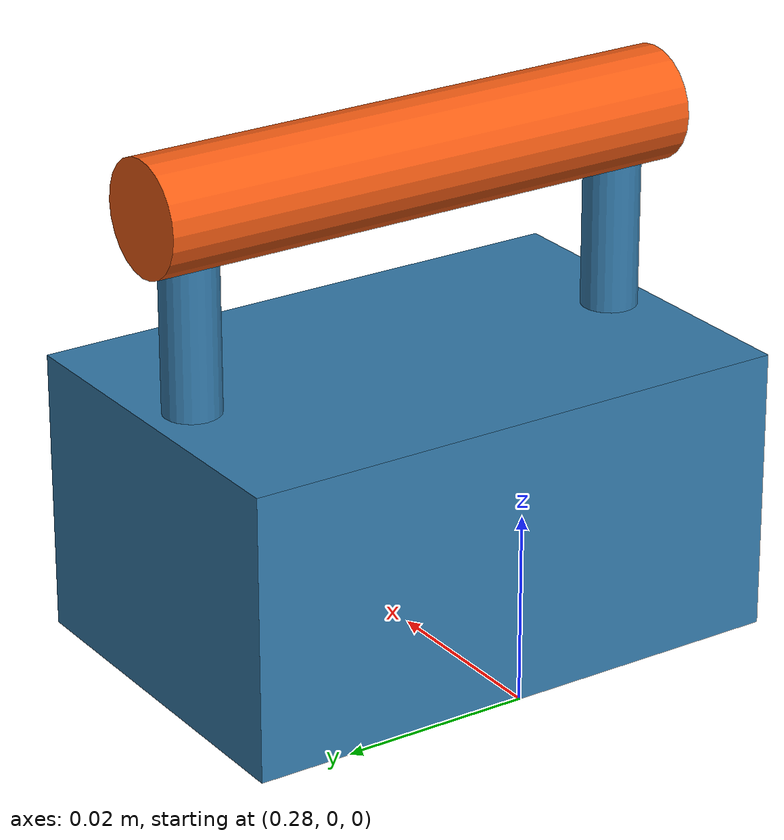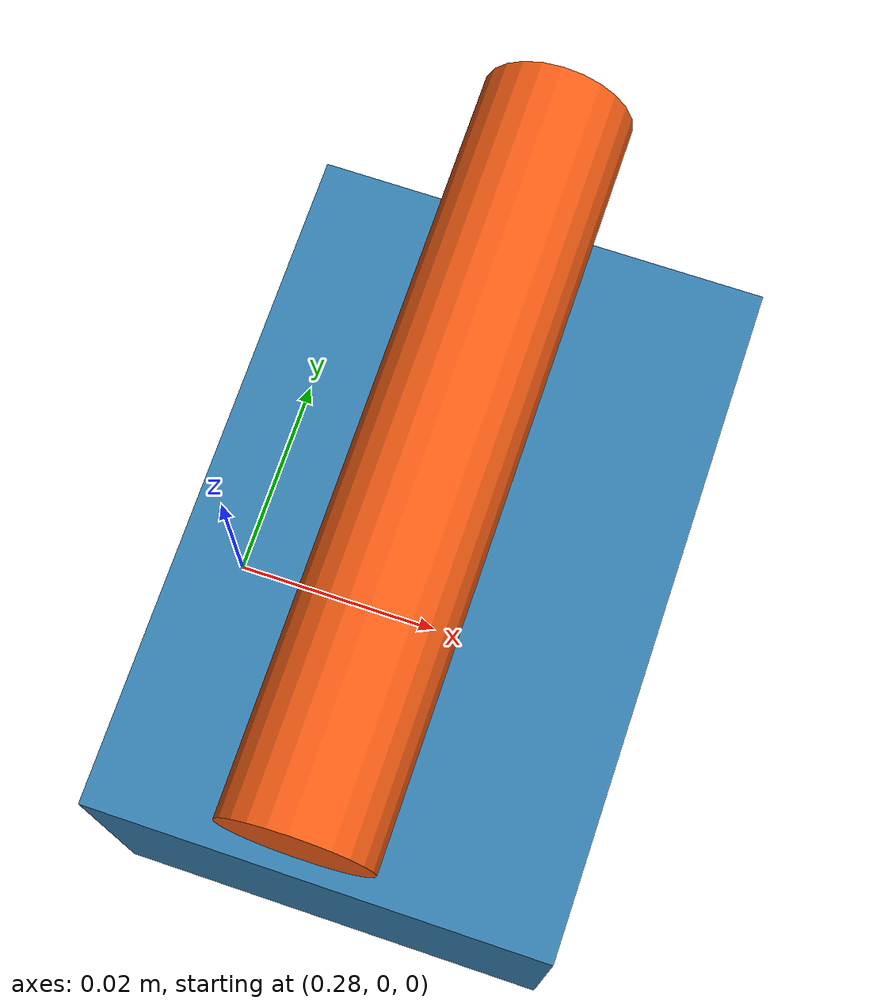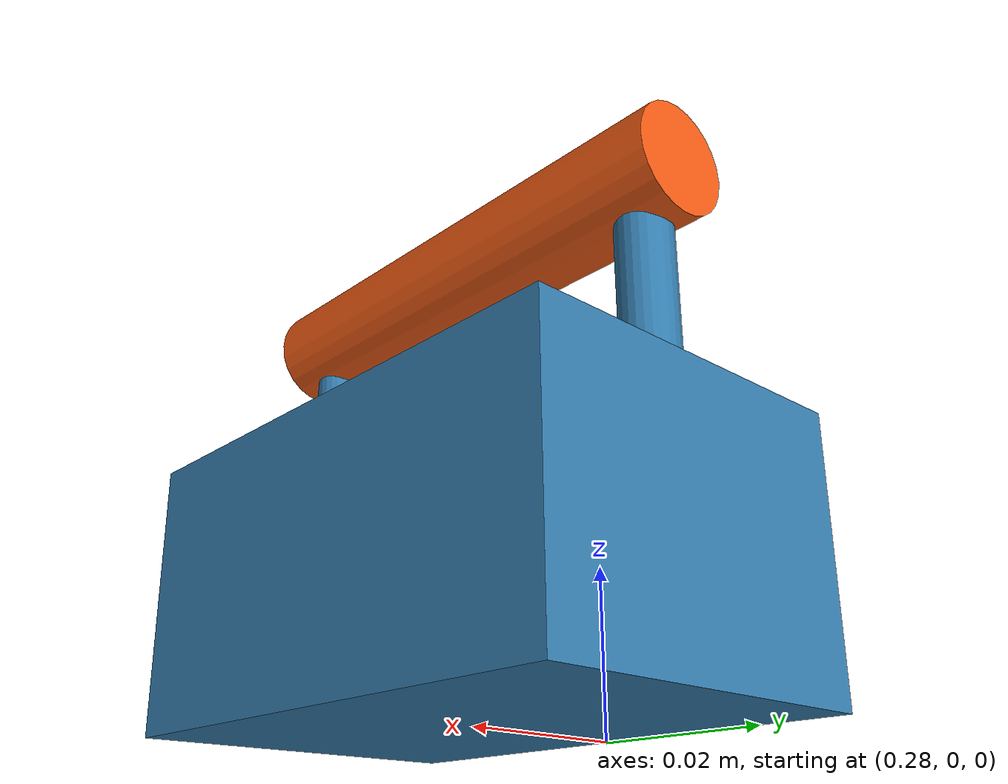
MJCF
<mujoco model="handle_weight_300g_v1">
  <worldbody>
    <body name="handle_weight_300g_v1" pos="0.3 0.0 0.051">
      <freejoint name="handle_weight_300g_v1_free" />
      <inertial mass="0.3" pos="0.0 0.0 -0.03525333333333333" fullinertia="0.00012005374666666664 6.772308e-05 0.0001302873333333333 0.0 0.0 0.0" />
      <geom name="handle_weight_300g_v1_grip" type="cylinder" size="0.006 0.03" pos="0.0 0.0 0.0" quat="0.7071067811865476 0.7071067811865476 0.0 0.0" density="0" contype="1" conaffinity="3" priority="2" friction="0.65 .01 .002" condim="3" solref=".005 1" solimp=".95 .99 .001" margin="0" rgba=".95 .36 .08 1" />
      <geom name="handle_weight_300g_v1_post_-1" type="cylinder" size="0.003 0.012" pos="0.0 -0.025 -0.016" quat="1.0 0.0 0.0 0.0" density="0" contype="1" conaffinity="3" priority="2" friction="0.65 .01 .002" condim="3" solref=".005 1" solimp=".95 .99 .001" margin="0" rgba=".20 .48 .67 1" />
      <geom name="handle_weight_300g_v1_post_1" type="cylinder" size="0.003 0.012" pos="0.0 0.025 -0.016" quat="1.0 0.0 0.0 0.0" density="0" contype="1" conaffinity="3" priority="2" friction="0.65 .01 .002" condim="3" solref=".005 1" solimp=".95 .99 .001" margin="0" rgba=".20 .48 .67 1" />
      <geom name="handle_weight_300g_v1_weight" type="box" size="0.02 0.03 0.015" pos="0.0 0.0 -0.036" quat="1.0 0.0 0.0 0.0" density="0" contype="1" conaffinity="3" priority="2" friction="0.65 .01 .002" condim="3" solref=".005 1" solimp=".95 .99 .001" margin="0" rgba=".20 .48 .67 1" />
    </body>
  </worldbody>
</mujoco>
